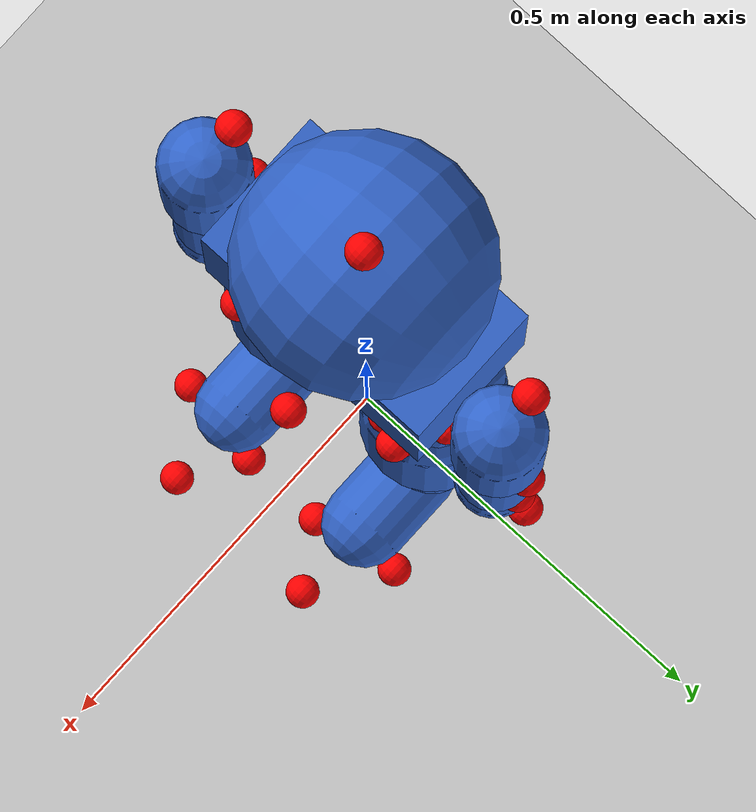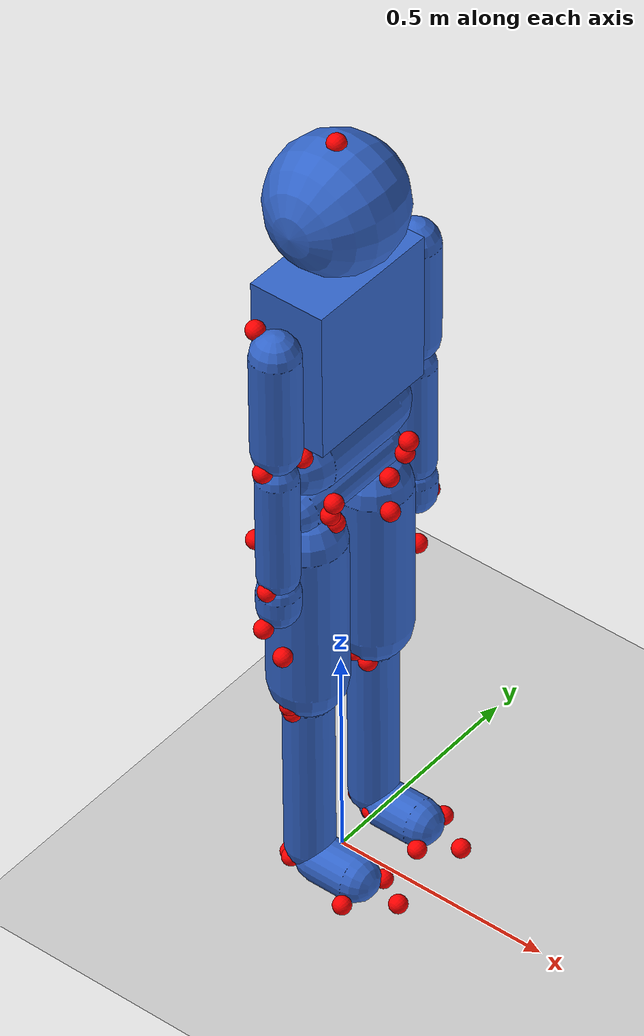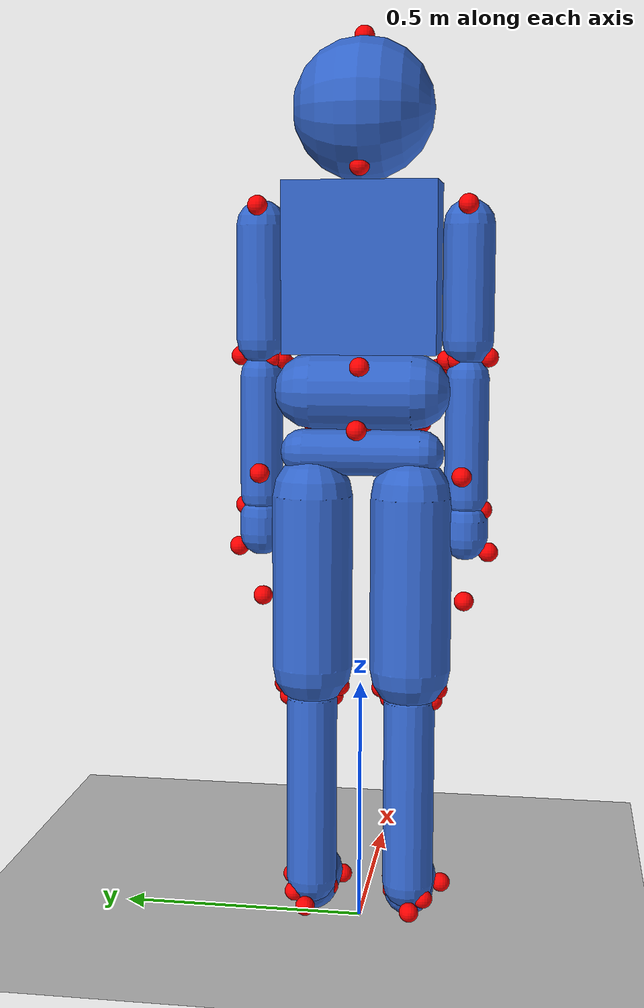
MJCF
<?xml version='1.0' encoding='utf-8'?>
<mujoco model="C:\Users\aleks\Desktop\Aleksie kerefeke\master\RS projekat - RL politika ucenja joystick\mujoco-bipedal-joystick-walker\generated_models\human_male_180cm_75kg_base">
  <visual>
    <map force="0.1" zfar="30" />
    <rgba haze="0.15 0.25 0.35 1" />
    <global offwidth="2560" offheight="1440" elevation="-20" azimuth="120" />
  </visual>
  <contact>
    <exclude body1="thorax" body2="head" />
    <exclude body1="thorax" body2="abdomen" />
    <exclude body1="abdomen" body2="pelvis" />
    <exclude body1="pelvis" body2="left_thigh" />
    <exclude body1="pelvis" body2="right_thigh" />
    <exclude body1="left_thigh" body2="left_shank" />
    <exclude body1="right_thigh" body2="right_shank" />
    <exclude body1="left_shank" body2="left_foot" />
    <exclude body1="right_shank" body2="right_foot" />
    <exclude body1="thorax" body2="left_upper_arm" />
    <exclude body1="thorax" body2="right_upper_arm" />
    <exclude body1="left_upper_arm" body2="left_forearm" />
    <exclude body1="right_upper_arm" body2="right_forearm" />
    <exclude body1="left_forearm" body2="left_hand" />
    <exclude body1="right_forearm" body2="right_hand" />
  </contact>
  <worldbody>
    <geom name="floor" type="plane" size="1 1 .1" rgba=".8 .8 .8 1" solref="0.02 1" solimp="0.85 0.95 0.005" />
    <light diffuse=".8 .8 .8" pos="0 0 3" dir="0 0 -1" />
    <body name="thorax" pos="0 0 1.5188135593220338" euler="90 0 0">
      <joint type="free" pos="0 0 0" />
      <geom type="box" size="0.08491525423728814 0.16983050847457629 0.15305084745762712" pos="0 -0.16983050847457629 0" euler="0 0 0" rgba="0.2 0.4 0.8 1.0" />
      <inertial mass="22.8" pos="0.0 -0.1885118644067797 -0.0013586440677966103" fullinertia="0.4640073275127837 0.28645350320942264 0.34090334266245337 -0.031828167023269176 0.00026304270267164614 0.002367384324044815" />
      <body name="head" pos="0 0 0">
        <joint name="head_x" type="hinge" axis="1 0 0" pos="0 0 0" range="-45.0 45.0" />
        <joint name="head_y" type="hinge" axis="0 1 0" pos="0 0 0" range="-80 80" />
        <joint name="head_z" type="hinge" axis="0 0 1" pos="0 0 0" range="-60 75.0" />
        <geom type="sphere" size="0.14135593220338985" pos="0 0.14135593220338985 0" euler="0 0 0" rgba="0.2 0.4 0.8 1.0" />
        <inertial mass="5.025" pos="0.005654237288135594 0.15096813559322037 0.0002827118644067797" fullinertia="0.03148764628095377 0.01771180103303649 0.036146532720482634 -0.0019679778925596105 -0.0001606512565354784 0.0003614653272048263" />
        <site name="head_vertex" pos="0.0 0.2816949152542373 0.0" size="0.02" rgba="1 0 0 1" />
        <site name="sellion" pos="0.10677966101694915 0.17593220338983048 0.0" size="0.02" rgba="1 0 0 1" />
        <site name="occiput" pos="-0.07423728813559322 0.1016949152542373 0.0" size="0.02" rgba="1 0 0 1" />
        <site name="centre_of_mass_head" pos="-0.006101694915254237 0.15152542372881356 0.0" size="0.02" rgba="1 0 0 1" />
      </body>
      <body name="abdomen" pos="0 -0.33966101694915257 0">
        <joint name="abdomen_x" type="hinge" axis="1 0 0" pos="0 0 0" range="-12.5 12.5" />
        <joint name="abdomen_y" type="hinge" axis="0 1 0" pos="0 0 0" range="-15 15" />
        <joint name="abdomen_z" type="hinge" axis="0 0 1" pos="0 0 0" range="-25 12.5" />
        <geom type="capsule" size="0.07677966101694915 0.10194915254237288" pos="0 -0.07677966101694915 0" euler="0 0 0" rgba="0.2 0.4 0.8 1.0" />
        <inertial mass="2.175" pos="0.027026440677966102 -0.055434915254237285 -0.005067457627118644" fullinertia="0.014955438560183852 0.022340840318299336 0.00820600195346165 0.000620578897730537 -0.00018463504395288706 -0.00012821878052283827" />
        <body name="pelvis" pos="0 -0.1535593220338983 0">
          <joint name="pelvis_x" type="hinge" axis="1 0 0" pos="0 0 0" range="-12.5 12.5" />
          <joint name="pelvis_y" type="hinge" axis="0 1 0" pos="0 0 0" range="-15 15" />
          <joint name="pelvis_z" type="hinge" axis="0 0 1" pos="0 0 0" range="-25 12.5" />
          <geom type="capsule" size="0.047288135593220336 0.11923728813559321" pos="0 -0.047288135593220336 0" euler="0 0 0" rgba="0.2 0.4 0.8 1.0" />
          <inertial mass="10.649999999999999" pos="-0.00018915254237288136 -0.026670508474576266 -0.0005674576271186441" fullinertia="0.09910928108704392 0.10703497523010629 0.08779230435392127 -0.005953796681987933 -0.0013717547555300198 -0.0006096687802355644" />
          <body name="left_thigh" pos="0.0 -0.09457627118644067 -0.1010115254237288">
            <joint name="left_hip_x" type="hinge" axis="1 0 0" pos="0 0 0" range="-20.0 40.0" />
            <joint name="left_hip_y" type="hinge" axis="0 1 0" pos="0 0 0" range="-40 50" />
            <joint name="left_hip_z" type="hinge" axis="0 0 1" pos="0 0 0" range="-30 100.0" />
            <geom type="capsule" size="0.08288135593220339 0.17822033898305084" pos="0 -0.21966101694915252 0" euler="-90 0 0" rgba="0.2 0.4 0.8 1.0" />
            <inertial mass="9.225000000000001" pos="-0.018012203389830506 -0.18846915254237287 -0.014497627118644068" fullinertia="0.1497367290043091 0.040060361505314564 0.16024144602125825 0.00872425650560184 0.0007121842045389257 0.00872425650560184" />
            <body name="left_shank" pos="0 -0.43932203389830504 0">
              <joint name="left_knee_z" type="hinge" axis="0 0 1" pos="0 0 0" range="-150 0.0" />
              <geom type="capsule" size="0.052372881355932197 0.19398305084745762" pos="0 -0.22016949152542373 0" euler="-90 0 0" rgba="0.2 0.4 0.8 1.0" />
              <inertial mass="3.6" pos="-0.021136271186440677 -0.18053898305084745 -0.0030823728813559317" fullinertia="0.054725890059178404 0.006980343119793164 0.054725890059178404 -0.001116854899166906 0.0002792137247917265 -0.001116854899166906" />
              <body name="left_foot" pos="0 -0.44033898305084745 0">
                <joint name="left_ankle_y" type="hinge" axis="0 1 0" pos="0 0 0" range="-30 30" />
                <joint name="left_ankle_z" type="hinge" axis="0 0 1" pos="0 0 0" range="-20 30.0" />
                <geom type="capsule" size="0.05135593220338983 0.04500000000000001" pos="0.07067796610169493 0 0" euler="0 90 0" rgba="0.2 0.4 0.8 1.0" solref="0.02 1" solimp="0.85 0.95 0.005" />
                <inertial mass="0.9" pos="0.0709606779661017 -0.028129830508474576 -0.004806101694915256" fullinertia="0.000870394121229532 0.004317802241884517 0.004143363750646367 0.000519718803792014 0.000217598530307383 -0.0" />
                <site name="calcaneous_left" pos="-0.04677966101694915 -0.02135593220338983 -0.00711864406779661" size="0.02" rgba="1 0 0 1" />
                <site name="first_metatarsal_head_left" pos="0.14847457627118643 -0.02135593220338983 0.04779661016949152" size="0.02" rgba="1 0 0 1" />
                <site name="fifth_metatarsal_head_left" pos="0.13016949152542373 -0.02135593220338983 -0.06101694915254237" size="0.02" rgba="1 0 0 1" />
                <site name="second_toe_tip_left" pos="0.22271186440677965 -0.009152542372881356 0.001016949152542373" size="0.02" rgba="1 0 0 1" />
                <site name="centre_of_mass_foot_left" pos="0.04576271186440677 -0.03661016949152542 -0.006101694915254237" size="0.02" rgba="1 0 0 1" />
                <site name="metatarsal_midpoint_left" pos="0.10576271186440676 0.0 0.0" size="0.02" rgba="1 0 0 1" />
              </body>
              <site name="tibiale_head_left" pos="0.02135593220338983 -0.027457627118644065 0.04271186440677966" size="0.02" rgba="1 0 0 1" />
              <site name="fibula_head_left" pos="0.0 -0.023389830508474575 -0.04779661016949152" size="0.02" rgba="1 0 0 1" />
              <site name="sphyrion_left" pos="0.02135593220338983 -0.4413559322033898 0.0335593220338983" size="0.02" rgba="1 0 0 1" />
              <site name="lateral_malleolus_left" pos="-0.02135593220338983 -0.44033898305084745 -0.0335593220338983" size="0.02" rgba="1 0 0 1" />
              <site name="centre_of_mass_shank_left" pos="-0.02135593220338983 -0.18101694915254235 -0.0030508474576271187" size="0.02" rgba="1 0 0 1" />
            </body>
            <site name="greater_trochanter_left" pos="-0.04067796610169491 0.006101694915254237 -0.10271186440677967" size="0.02" rgba="1 0 0 1" />
            <site name="lateral_femoral_epicondyle_left" pos="0.0 -0.4383050847457627 -0.057966101694915256" size="0.02" rgba="1 0 0 1" />
            <site name="medial_femoral_epicondyle_left" pos="0.0 -0.43932203389830504 0.057966101694915256" size="0.02" rgba="1 0 0 1" />
            <site name="centre_of_mass_thigh_left" pos="-0.01830508474576271 -0.18813559322033896 -0.01423728813559322" size="0.02" rgba="1 0 0 1" />
          </body>
          <body name="right_thigh" pos="0.0 -0.09457627118644067 0.1010115254237288">
            <joint name="right_hip_x" type="hinge" axis="1 0 0" pos="0 0 0" range="-40.0 20.0" />
            <joint name="right_hip_y" type="hinge" axis="0 1 0" pos="0 0 0" range="-40 50" />
            <joint name="right_hip_z" type="hinge" axis="0 0 1" pos="0 0 0" range="-30 100.0" />
            <geom type="capsule" size="0.08288135593220339 0.17822033898305084" pos="0 -0.21966101694915252 0" euler="-90 0 0" rgba="0.2 0.4 0.8 1.0" />
            <inertial mass="9.225000000000001" pos="-0.018012203389830506 -0.18846915254237287 0.014497627118644068" fullinertia="0.1497367290043091 0.040060361505314564 0.16024144602125825 0.00872425650560184 -0.0007121842045389257 -0.00872425650560184" />
            <body name="right_shank" pos="0 -0.43932203389830504 0">
              <joint name="right_knee_z" type="hinge" axis="0 0 1" pos="0 0 0" range="-150 0.0" />
              <geom type="capsule" size="0.052372881355932197 0.19398305084745762" pos="0 -0.22016949152542373 0" euler="-90 0 0" rgba="0.2 0.4 0.8 1.0" />
              <inertial mass="3.6" pos="-0.021136271186440677 -0.18053898305084745 0.0030823728813559317" fullinertia="0.054725890059178404 0.006980343119793164 0.054725890059178404 -0.001116854899166906 -0.0002792137247917265 0.001116854899166906" />
              <body name="right_foot" pos="0 -0.44033898305084745 0">
                <joint name="right_ankle_y" type="hinge" axis="0 1 0" pos="0 0 0" range="-30 30" />
                <joint name="right_ankle_z" type="hinge" axis="0 0 1" pos="0 0 0" range="-20 30.0" />
                <geom type="capsule" size="0.05135593220338983 0.04500000000000001" pos="0.07067796610169493 0 0" euler="0 90 0" rgba="0.2 0.4 0.8 1.0" solref="0.02 1" solimp="0.85 0.95 0.005" />
                <inertial mass="0.9" pos="0.0709606779661017 -0.028129830508474576 0.004806101694915256" fullinertia="0.000870394121229532 0.004317802241884517 0.004143363750646367 0.000519718803792014 -0.000217598530307383 0.0" />
                <site name="calcaneous_right" pos="-0.04677966101694915 -0.02135593220338983 0.00711864406779661" size="0.02" rgba="1 0 0 1" />
                <site name="first_metatarsal_head_right" pos="0.14847457627118643 -0.02135593220338983 -0.04779661016949152" size="0.02" rgba="1 0 0 1" />
                <site name="fifth_metatarsal_head_right" pos="0.13016949152542373 -0.02135593220338983 0.06101694915254237" size="0.02" rgba="1 0 0 1" />
                <site name="second_toe_tip_right" pos="0.22271186440677965 -0.009152542372881356 -0.001016949152542373" size="0.02" rgba="1 0 0 1" />
                <site name="centre_of_mass_foot_right" pos="0.04576271186440677 -0.03661016949152542 0.006101694915254237" size="0.02" rgba="1 0 0 1" />
                <site name="metatarsal_midpoint_right" pos="0.10576271186440676 0.0 0.0" size="0.02" rgba="1 0 0 1" />
              </body>
              <site name="tibiale_head_right" pos="0.02135593220338983 -0.027457627118644065 -0.04271186440677966" size="0.02" rgba="1 0 0 1" />
              <site name="fibula_head_right" pos="0.0 -0.023389830508474575 0.04779661016949152" size="0.02" rgba="1 0 0 1" />
              <site name="sphyrion_right" pos="0.02135593220338983 -0.4413559322033898 -0.0335593220338983" size="0.02" rgba="1 0 0 1" />
              <site name="lateral_malleolus_right" pos="-0.02135593220338983 -0.44033898305084745 0.0335593220338983" size="0.02" rgba="1 0 0 1" />
              <site name="centre_of_mass_shank_right" pos="-0.02135593220338983 -0.18101694915254235 0.0030508474576271187" size="0.02" rgba="1 0 0 1" />
            </body>
            <site name="greater_trochanter_right" pos="-0.04067796610169491 0.006101694915254237 0.10271186440677967" size="0.02" rgba="1 0 0 1" />
            <site name="lateral_femoral_epicondyle_right" pos="0.0 -0.4383050847457627 0.057966101694915256" size="0.02" rgba="1 0 0 1" />
            <site name="medial_femoral_epicondyle_right" pos="0.0 -0.43932203389830504 -0.057966101694915256" size="0.02" rgba="1 0 0 1" />
            <site name="centre_of_mass_thigh_right" pos="-0.01830508474576271 -0.18813559322033896 0.01423728813559322" size="0.02" rgba="1 0 0 1" />
          </body>
          <site name="midpoint_between_postero_superior_iliac_spines" pos="-0.10372881355932202 0.00711864406779661 0.0" size="0.02" rgba="1 0 0 1" />
          <site name="antero_superior_iliac_spine_right" pos="0.07932203389830508 0.00711864406779661 0.11389830508474576" size="0.02" rgba="1 0 0 1" />
          <site name="antero_superior_iliac_spine_left" pos="0.07932203389830508 0.00711864406779661 -0.11389830508474576" size="0.02" rgba="1 0 0 1" />
          <site name="symphision" pos="0.12508474576271186 -0.06813559322033898 0.0" size="0.02" rgba="1 0 0 1" />
          <site name="hip_joint_centre_right" pos="0.05694915254237288 -0.07627118644067796 0.0823728813559322" size="0.02" rgba="1 0 0 1" />
          <site name="hip_joint_centre_left" pos="0.05694915254237288 -0.07627118644067796 -0.0823728813559322" size="0.02" rgba="1 0 0 1" />
          <site name="centre_of_mass_pelvis" pos="-0.0030508474576271187 -0.02644067796610169 0.0" size="0.02" rgba="1 0 0 1" />
        </body>
        <site name="midspine_at_tenth_rib_level" pos="-0.05898305084745763 -0.025423728813559324 0.0" size="0.02" rgba="1 0 0 1" />
        <site name="tenth_rib_right" pos="0.0335593220338983 -0.031525423728813555 0.1494915254237288" size="0.02" rgba="1 0 0 1" />
        <site name="tenth_rib_left" pos="0.0335593220338983 -0.031525423728813555 -0.1494915254237288" size="0.02" rgba="1 0 0 1" />
        <site name="iliocristale_right" pos="0.020338983050847456 -0.08135593220338982 0.15966101694915252" size="0.02" rgba="1 0 0 1" />
        <site name="iliocristale_left" pos="0.020338983050847456 -0.08135593220338982 -0.15966101694915252" size="0.02" rgba="1 0 0 1" />
        <site name="anterior_superior_iliac_spine_right" pos="0.07016949152542373 -0.18203389830508473 0.11389830508474576" size="0.02" rgba="1 0 0 1" />
        <site name="anterior_superior_iliac_spine_left" pos="0.07016949152542373 -0.18203389830508473 -0.11389830508474576" size="0.02" rgba="1 0 0 1" />
        <site name="lumbar_joint_centre" pos="0.0 -0.1535593220338983 0.0" size="0.02" rgba="1 0 0 1" />
        <site name="centre_of_mass_abdomen" pos="0.02644067796610169 -0.05593220338983051 0.0" size="0.02" rgba="1 0 0 1" />
      </body>
      <body name="left_upper_arm" pos="0.019322033898305082 -0.08440677966101695 -0.20949152542372879">
        <joint name="left_shoulder_x" type="hinge" axis="1 0 0" pos="0 0 0" range="-50.0 180.0" />
        <joint name="left_shoulder_y" type="hinge" axis="0 1 0" pos="0 0 0" range="-90 90" />
        <joint name="left_shoulder_z" type="hinge" axis="0 0 1" pos="0 0 0" range="-50 180.0" />
        <geom type="capsule" size="0.05135593220338983 0.11516949152542373" pos="0 -0.11516949152542373 0" euler="-90 0 0" rgba="0.2 0.4 0.8 1.0" />
        <inertial mass="1.8" pos="0.005070508474576272 -0.13577694915254238 0.008732542372881355" fullinertia="0.012012309586900315 0.0024138886090203965 0.012855028095374891 0.00035708411376041377 -0.0001285502809537489 0.0024138886090203965" />
        <body name="left_forearm" pos="0 -0.2816949152542373 0">
          <joint name="left_elbow_z" type="hinge" axis="0 0 1" pos="0 0 0" range="0 150.0" />
          <geom type="capsule" size="0.04372881355932203 0.12203389830508472" pos="0 -0.14389830508474574 0" euler="-90 0 0" rgba="0.2 0.4 0.8 1.0" />
          <inertial mass="1.2750000000000001" pos="-0.0037413559322033896 -0.12001118644067796 -0.0031657627118644067" fullinertia="0.008279375806952026 0.001277811827348463 0.008279375806952026 0.0006758674128124101 1.0560428325193909e-05 -4.2241713300775634e-05" />
          <body name="left_hand" pos="0 -0.2877966101694915 0">
            <joint name="left_wrist_y" type="hinge" axis="0 1 0" pos="0 0 0" range="-80 80" />
            <joint name="left_wrist_z" type="hinge" axis="0 0 1" pos="0 0 0" range="-60 60.0" />
            <geom type="capsule" size="0.04525423728813559 0.01805084745762712" pos="0 -0.04067796610169491 0" euler="-90 0 0" rgba="0.2 0.4 0.8 1.0" />
            <inertial mass="0.45" pos="0.0066711864406779646 -0.06825762711864407 -0.0061016949152542365" fullinertia="0.0011082829072105714 0.00043008882505027286 0.0009340433208848032 0.00014415719620798617 -6.701522550991094e-05 0.00011913817868428613" />
            <site name="secnd_metacarpal_head_left" pos="0.0 -0.08745762711864406 -0.04677966101694915" size="0.02" rgba="1 0 0 1" />
            <site name="fifth_metacarpal_head_left" pos="0.0 -0.07627118644067796 0.04677966101694915" size="0.02" rgba="1 0 0 1" />
            <site name="third_finger_tip_left" pos="0.00711864406779661 -0.19220338983050847 0.001016949152542373" size="0.02" rgba="1 0 0 1" />
            <site name="centre_of_mass_left" pos="0.00711864406779661 -0.06915254237288136 -0.006101694915254237" size="0.02" rgba="1 0 0 1" />
          </body>
          <site name="olecranion_left" pos="-0.008135593220338983 0.01423728813559322 0.0223728813559322" size="0.02" rgba="1 0 0 1" />
          <site name="ulnar_styloid_left" pos="0.0 -0.28881355932203384 0.0335593220338983" size="0.02" rgba="1 0 0 1" />
          <site name="radial_styloid_left" pos="0.0 -0.28881355932203384 -0.0335593220338983" size="0.02" rgba="1 0 0 1" />
          <site name="centre_of_mass_forearm_left" pos="0.0030508474576271187 -0.11999999999999998 -0.004067796610169492" size="0.02" rgba="1 0 0 1" />
        </body>
        <site name="lateral_humeral_epicondyle_left" pos="0.0 -0.2623728813559322 -0.04169491525423729" size="0.02" rgba="1 0 0 1" />
        <site name="medial_humeral_epicondyle_left" pos="0.0 -0.2684745762711864 0.04169491525423729" size="0.02" rgba="1 0 0 1" />
        <site name="centre_of_mass_upper_arm_left" pos="0.005084745762711864 -0.11999999999999998 -0.00711864406779661" size="0.02" rgba="1 0 0 1" />
      </body>
      <body name="right_upper_arm" pos="0.019322033898305082 -0.08440677966101695 0.20949152542372879">
        <joint name="right_shoulder_x" type="hinge" axis="1 0 0" pos="0 0 0" range="-180.0 50.0" />
        <joint name="right_shoulder_y" type="hinge" axis="0 1 0" pos="0 0 0" range="-90 90" />
        <joint name="right_shoulder_z" type="hinge" axis="0 0 1" pos="0 0 0" range="-50 180.0" />
        <geom type="capsule" size="0.05135593220338983 0.11516949152542373" pos="0 -0.11516949152542373 0" euler="-90 0 0" rgba="0.2 0.4 0.8 1.0" />
        <inertial mass="1.8" pos="0.005070508474576272 -0.13577694915254238 -0.008732542372881355" fullinertia="0.012012309586900315 0.0024138886090203965 0.012855028095374891 0.00035708411376041377 0.0001285502809537489 -0.0024138886090203965" />
        <body name="right_forearm" pos="0 -0.2816949152542373 0">
          <joint name="right_elbow_z" type="hinge" axis="0 0 1" pos="0 0 0" range="0 150.0" />
          <geom type="capsule" size="0.04372881355932203 0.12203389830508472" pos="0 -0.14389830508474574 0" euler="-90 0 0" rgba="0.2 0.4 0.8 1.0" />
          <inertial mass="1.2750000000000001" pos="-0.0037413559322033896 -0.12001118644067796 0.0031657627118644067" fullinertia="0.008279375806952026 0.001277811827348463 0.008279375806952026 0.0006758674128124101 -1.0560428325193909e-05 4.2241713300775634e-05" />
          <body name="right_hand" pos="0 -0.2877966101694915 0">
            <joint name="right_wrist_y" type="hinge" axis="0 1 0" pos="0 0 0" range="-80 80" />
            <joint name="right_wrist_z" type="hinge" axis="0 0 1" pos="0 0 0" range="-60 60.0" />
            <geom type="capsule" size="0.04525423728813559 0.01805084745762712" pos="0 -0.04067796610169491 0" euler="-90 0 0" rgba="0.2 0.4 0.8 1.0" />
            <inertial mass="0.45" pos="0.0066711864406779646 -0.06825762711864407 0.0061016949152542365" fullinertia="0.0011082829072105714 0.00043008882505027286 0.0009340433208848032 0.00014415719620798617 6.701522550991094e-05 -0.00011913817868428613" />
            <site name="secnd_metacarpal_head_right" pos="0.0 -0.08745762711864406 0.04677966101694915" size="0.02" rgba="1 0 0 1" />
            <site name="fifth_metacarpal_head_right" pos="0.0 -0.07627118644067796 -0.04677966101694915" size="0.02" rgba="1 0 0 1" />
            <site name="third_finger_tip_right" pos="0.00711864406779661 -0.19220338983050847 -0.001016949152542373" size="0.02" rgba="1 0 0 1" />
            <site name="centre_of_mass_right" pos="0.00711864406779661 -0.06915254237288136 0.006101694915254237" size="0.02" rgba="1 0 0 1" />
          </body>
          <site name="olecranion_right" pos="-0.008135593220338983 0.01423728813559322 -0.0223728813559322" size="0.02" rgba="1 0 0 1" />
          <site name="ulnar_styloid_right" pos="0.0 -0.28881355932203384 -0.0335593220338983" size="0.02" rgba="1 0 0 1" />
          <site name="radial_styloid_right" pos="0.0 -0.28881355932203384 0.0335593220338983" size="0.02" rgba="1 0 0 1" />
          <site name="centre_of_mass_forearm_right" pos="0.0030508474576271187 -0.11999999999999998 0.004067796610169492" size="0.02" rgba="1 0 0 1" />
        </body>
        <site name="lateral_humeral_epicondyle_right" pos="0.0 -0.2623728813559322 0.04169491525423729" size="0.02" rgba="1 0 0 1" />
        <site name="medial_humeral_epicondyle_right" pos="0.0 -0.2684745762711864 -0.04169491525423729" size="0.02" rgba="1 0 0 1" />
        <site name="centre_of_mass_upper_arm_right" pos="0.005084745762711864 -0.11999999999999998 0.00711864406779661" size="0.02" rgba="1 0 0 1" />
      </body>
      <site name="seventh_cervicale" pos="-0.07322033898305084 0.02644067796610169 0.0" size="0.02" rgba="1 0 0 1" />
      <site name="suprasternale" pos="0.05186440677966101 -0.03966101694915254 0.0" size="0.02" rgba="1 0 0 1" />
      <site name="acromion_right" pos="-0.027457627118644065 -0.04576271186440677 0.20949152542372879" size="0.02" rgba="1 0 0 1" />
      <site name="acromion_left" pos="-0.027457627118644065 -0.04576271186440677 -0.20949152542372879" size="0.02" rgba="1 0 0 1" />
      <site name="shoulder_joint_centre_right" pos="0.019322033898305082 -0.08440677966101695 0.20949152542372879" size="0.02" rgba="1 0 0 1" />
      <site name="shoulder_joint_centre_left" pos="0.019322033898305082 -0.08440677966101695 -0.20949152542372879" size="0.02" rgba="1 0 0 1" />
      <site name="thoracic_joint_centre" pos="0.0 -0.33966101694915257 0.0" size="0.02" rgba="1 0 0 1" />
      <site name="centre_of_mass_thorax" pos="0.0 -0.18813559322033896 0.001016949152542373" size="0.02" rgba="1 0 0 1" />
    </body>
  </worldbody>
  <option gravity="0 0 -9.81" />
  <keyframe>
    <key name="t-pose" qpos="0 0 1.5188135593220338 0.7071 0.7071 0 0 0 0 0 0 0 0 0 0 0 0 0 0 0 0 0 0 0 0 0 0 0 1.57079632679 0 0 0 0 0 -1.57079632679 0 0 0 0 0" />
    <key name="a-pose" qpos="0 0 1.5188135593220338 0.7071 0.7071 0 0 0 0 0 0 0 0 0 0 0 0 0 0 0 0 0 0 0 0 0 0 0 0.75 0 0 0 0 0 -0.75 0 0 0 0 0" />
  </keyframe>
</mujoco>
